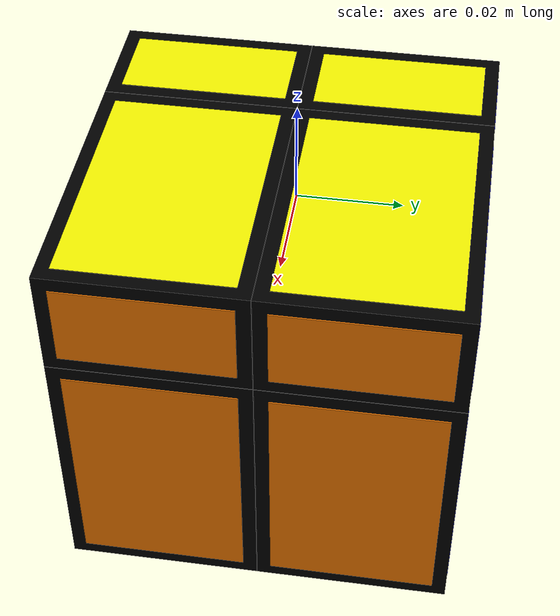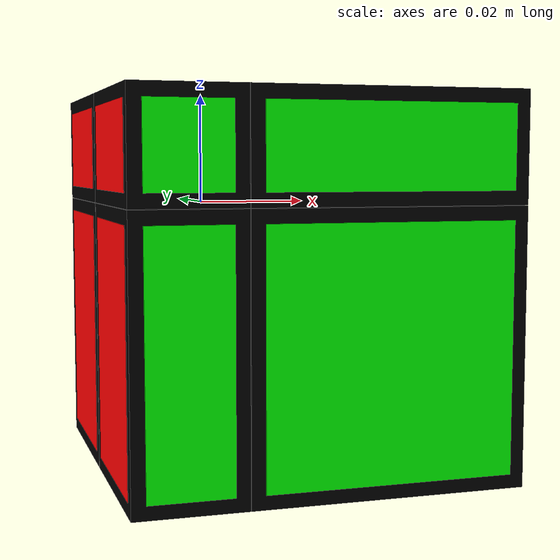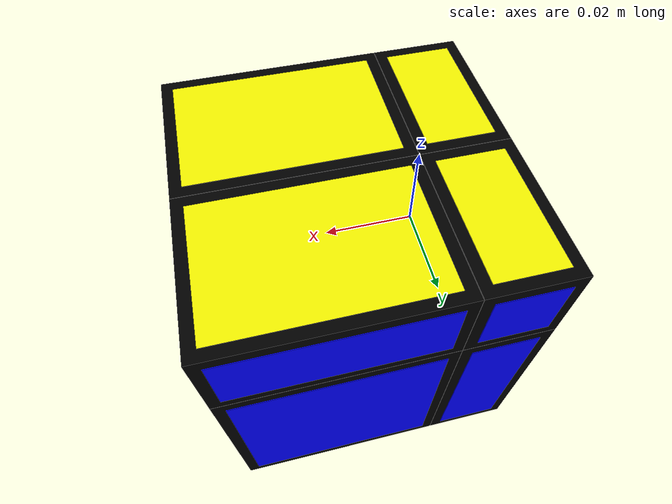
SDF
<?xml version="1.0" ?>
<sdf version="1.7">
	<model name="mirror_cube_2x2">
		<link name="center"/>
		<link name="cubie_0_0_0">
			<pose>-0.010050000000000002 -0.017550000000000003 -0.025050000000000003 0.0 0.0 0.0</pose>
			<inertial>
				<mass>0.013650000000000004</mass>
				<inertia>
					<ixx>4.237187500000002e-06</ixx>
					<ixy>0.0</ixy>
					<ixz>0.0</ixz>
					<iyy>3.2987500000000017e-06</iyy>
					<iyz>0.0</iyz>
					<izz>1.8484375000000009e-06</izz>
				</inertia>
			</inertial>
			<collision name="collision">
				<geometry>
					<box>
						<size>0.020000000000000004 0.035 0.05</size>
					</box>
				</geometry>
				<surface>
					<friction>
						<ode>
							<mu>0.6</mu>
							<mu2>0.6</mu2>
						</ode>
					</friction>
				</surface>
			</collision>
			<visual name="black">
				<geometry>
					<box>
						<size>0.020000000000000004 0.035 0.05</size>
					</box>
				</geometry>
				<material>
					<diffuse>0 0 0 1</diffuse>
				</material>
			</visual>
			<visual name="red">
				<pose>-0.010000000000000002 0.0 0.0 0.0 0.0 0.0</pose>
				<geometry>
					<box>
						<size>0.00015 0.03 0.045</size>
					</box>
				</geometry>
				<material>
					<diffuse>1 0 0 1</diffuse>
				</material>
			</visual>
			<visual name="green">
				<pose>0.0 -0.0175 0.0 0.0 0.0 0.0</pose>
				<geometry>
					<box>
						<size>0.015 0.0003 0.045</size>
					</box>
				</geometry>
				<material>
					<diffuse>0 1 0 1</diffuse>
				</material>
			</visual>
			<visual name="white">
				<pose>0.0 0.0 -0.025 0.0 0.0 0.0</pose>
				<geometry>
					<box>
						<size>0.015 0.03 0.00045</size>
					</box>
				</geometry>
				<material>
					<diffuse>1 1 1 1</diffuse>
				</material>
			</visual>
		</link>
		<joint name="ball_0_0_0" type="ball">
			<pose>0.010050000000000002 0.017550000000000003 0.025050000000000003 -0.0 -0.0 -0.0</pose>
			<parent>center</parent>
			<child>cubie_0_0_0</child>
			<axis>
				<dynamics>
					<damping>0.1</damping>
				</dynamics>
				<limit>
					<effort>0</effort>
				</limit>
			</axis>
		</joint>
		<link name="cubie_0_0_1">
			<pose>-0.010050000000000002 -0.017550000000000003 0.010050000000000002 0.0 0.0 0.0</pose>
			<inertial>
				<mass>0.005460000000000002</mass>
				<inertia>
					<ixx>7.393750000000004e-07</ixx>
					<ixy>0.0</ixy>
					<ixz>0.0</ixz>
					<iyy>3.640000000000003e-07</iyy>
					<iyz>0.0</iyz>
					<izz>7.393750000000004e-07</izz>
				</inertia>
			</inertial>
			<collision name="collision">
				<geometry>
					<box>
						<size>0.020000000000000004 0.035 0.020000000000000004</size>
					</box>
				</geometry>
				<surface>
					<friction>
						<ode>
							<mu>0.6</mu>
							<mu2>0.6</mu2>
						</ode>
					</friction>
				</surface>
			</collision>
			<visual name="black">
				<geometry>
					<box>
						<size>0.020000000000000004 0.035 0.020000000000000004</size>
					</box>
				</geometry>
				<material>
					<diffuse>0 0 0 1</diffuse>
				</material>
			</visual>
			<visual name="red">
				<pose>-0.010000000000000002 0.0 0.0 0.0 0.0 0.0</pose>
				<geometry>
					<box>
						<size>0.00015 0.03 0.015</size>
					</box>
				</geometry>
				<material>
					<diffuse>1 0 0 1</diffuse>
				</material>
			</visual>
			<visual name="green">
				<pose>0.0 -0.0175 0.0 0.0 0.0 0.0</pose>
				<geometry>
					<box>
						<size>0.015 0.0003 0.015</size>
					</box>
				</geometry>
				<material>
					<diffuse>0 1 0 1</diffuse>
				</material>
			</visual>
			<visual name="yellow">
				<pose>0.0 0.0 0.010000000000000002 0.0 0.0 0.0</pose>
				<geometry>
					<box>
						<size>0.015 0.03 0.00015</size>
					</box>
				</geometry>
				<material>
					<diffuse>1 1 0 1</diffuse>
				</material>
			</visual>
		</link>
		<joint name="ball_0_0_1" type="ball">
			<pose>0.010050000000000002 0.017550000000000003 -0.010050000000000002 -0.0 -0.0 -0.0</pose>
			<parent>center</parent>
			<child>cubie_0_0_1</child>
			<axis>
				<dynamics>
					<damping>0.1</damping>
				</dynamics>
				<limit>
					<effort>0</effort>
				</limit>
			</axis>
		</joint>
		<link name="cubie_0_1_0">
			<pose>-0.010050000000000002 0.017550000000000003 -0.025050000000000003 0.0 0.0 0.0</pose>
			<inertial>
				<mass>0.013650000000000004</mass>
				<inertia>
					<ixx>4.237187500000002e-06</ixx>
					<ixy>0.0</ixy>
					<ixz>0.0</ixz>
					<iyy>3.2987500000000017e-06</iyy>
					<iyz>0.0</iyz>
					<izz>1.8484375000000009e-06</izz>
				</inertia>
			</inertial>
			<collision name="collision">
				<geometry>
					<box>
						<size>0.020000000000000004 0.035 0.05</size>
					</box>
				</geometry>
				<surface>
					<friction>
						<ode>
							<mu>0.6</mu>
							<mu2>0.6</mu2>
						</ode>
					</friction>
				</surface>
			</collision>
			<visual name="black">
				<geometry>
					<box>
						<size>0.020000000000000004 0.035 0.05</size>
					</box>
				</geometry>
				<material>
					<diffuse>0 0 0 1</diffuse>
				</material>
			</visual>
			<visual name="red">
				<pose>-0.010000000000000002 0.0 0.0 0.0 0.0 0.0</pose>
				<geometry>
					<box>
						<size>0.00015 0.03 0.045</size>
					</box>
				</geometry>
				<material>
					<diffuse>1 0 0 1</diffuse>
				</material>
			</visual>
			<visual name="blue">
				<pose>0.0 0.0175 0.0 0.0 0.0 0.0</pose>
				<geometry>
					<box>
						<size>0.015 0.0003 0.045</size>
					</box>
				</geometry>
				<material>
					<diffuse>0 0 1 1</diffuse>
				</material>
			</visual>
			<visual name="white">
				<pose>0.0 0.0 -0.025 0.0 0.0 0.0</pose>
				<geometry>
					<box>
						<size>0.015 0.03 0.00045</size>
					</box>
				</geometry>
				<material>
					<diffuse>1 1 1 1</diffuse>
				</material>
			</visual>
		</link>
		<joint name="ball_0_1_0" type="ball">
			<pose>0.010050000000000002 -0.017550000000000003 0.025050000000000003 -0.0 -0.0 -0.0</pose>
			<parent>center</parent>
			<child>cubie_0_1_0</child>
			<axis>
				<dynamics>
					<damping>0.1</damping>
				</dynamics>
				<limit>
					<effort>0</effort>
				</limit>
			</axis>
		</joint>
		<link name="cubie_0_1_1">
			<pose>-0.010050000000000002 0.017550000000000003 0.010050000000000002 0.0 0.0 0.0</pose>
			<inertial>
				<mass>0.005460000000000002</mass>
				<inertia>
					<ixx>7.393750000000004e-07</ixx>
					<ixy>0.0</ixy>
					<ixz>0.0</ixz>
					<iyy>3.640000000000003e-07</iyy>
					<iyz>0.0</iyz>
					<izz>7.393750000000004e-07</izz>
				</inertia>
			</inertial>
			<collision name="collision">
				<geometry>
					<box>
						<size>0.020000000000000004 0.035 0.020000000000000004</size>
					</box>
				</geometry>
				<surface>
					<friction>
						<ode>
							<mu>0.6</mu>
							<mu2>0.6</mu2>
						</ode>
					</friction>
				</surface>
			</collision>
			<visual name="black">
				<geometry>
					<box>
						<size>0.020000000000000004 0.035 0.020000000000000004</size>
					</box>
				</geometry>
				<material>
					<diffuse>0 0 0 1</diffuse>
				</material>
			</visual>
			<visual name="red">
				<pose>-0.010000000000000002 0.0 0.0 0.0 0.0 0.0</pose>
				<geometry>
					<box>
						<size>0.00015 0.03 0.015</size>
					</box>
				</geometry>
				<material>
					<diffuse>1 0 0 1</diffuse>
				</material>
			</visual>
			<visual name="blue">
				<pose>0.0 0.0175 0.0 0.0 0.0 0.0</pose>
				<geometry>
					<box>
						<size>0.015 0.0003 0.015</size>
					</box>
				</geometry>
				<material>
					<diffuse>0 0 1 1</diffuse>
				</material>
			</visual>
			<visual name="yellow">
				<pose>0.0 0.0 0.010000000000000002 0.0 0.0 0.0</pose>
				<geometry>
					<box>
						<size>0.015 0.03 0.00015</size>
					</box>
				</geometry>
				<material>
					<diffuse>1 1 0 1</diffuse>
				</material>
			</visual>
		</link>
		<joint name="ball_0_1_1" type="ball">
			<pose>0.010050000000000002 -0.017550000000000003 -0.010050000000000002 -0.0 -0.0 -0.0</pose>
			<parent>center</parent>
			<child>cubie_0_1_1</child>
			<axis>
				<dynamics>
					<damping>0.1</damping>
				</dynamics>
				<limit>
					<effort>0</effort>
				</limit>
			</axis>
		</joint>
		<link name="cubie_1_0_0">
			<pose>0.025050000000000003 -0.017550000000000003 -0.025050000000000003 0.0 0.0 0.0</pose>
			<inertial>
				<mass>0.034125</mass>
				<inertia>
					<ixx>1.0592968750000005e-05</ixx>
					<ixy>0.0</ixy>
					<ixz>0.0</ixz>
					<iyy>1.4218750000000005e-05</iyy>
					<iyz>0.0</iyz>
					<izz>1.0592968750000005e-05</izz>
				</inertia>
			</inertial>
			<collision name="collision">
				<geometry>
					<box>
						<size>0.05 0.035 0.05</size>
					</box>
				</geometry>
				<surface>
					<friction>
						<ode>
							<mu>0.6</mu>
							<mu2>0.6</mu2>
						</ode>
					</friction>
				</surface>
			</collision>
			<visual name="black">
				<geometry>
					<box>
						<size>0.05 0.035 0.05</size>
					</box>
				</geometry>
				<material>
					<diffuse>0 0 0 1</diffuse>
				</material>
			</visual>
			<visual name="orange">
				<pose>0.025 0.0 0.0 0.0 0.0 0.0</pose>
				<geometry>
					<box>
						<size>0.00045 0.03 0.045</size>
					</box>
				</geometry>
				<material>
					<diffuse>1.0 0.5 0.0 1.0</diffuse>
				</material>
			</visual>
			<visual name="green">
				<pose>0.0 -0.0175 0.0 0.0 0.0 0.0</pose>
				<geometry>
					<box>
						<size>0.045 0.0003 0.045</size>
					</box>
				</geometry>
				<material>
					<diffuse>0 1 0 1</diffuse>
				</material>
			</visual>
			<visual name="white">
				<pose>0.0 0.0 -0.025 0.0 0.0 0.0</pose>
				<geometry>
					<box>
						<size>0.045 0.03 0.00045</size>
					</box>
				</geometry>
				<material>
					<diffuse>1 1 1 1</diffuse>
				</material>
			</visual>
		</link>
		<joint name="ball_1_0_0" type="ball">
			<pose>-0.025050000000000003 0.017550000000000003 0.025050000000000003 -0.0 -0.0 -0.0</pose>
			<parent>center</parent>
			<child>cubie_1_0_0</child>
			<axis>
				<dynamics>
					<damping>0.1</damping>
				</dynamics>
				<limit>
					<effort>0</effort>
				</limit>
			</axis>
		</joint>
		<link name="cubie_1_0_1">
			<pose>0.025050000000000003 -0.017550000000000003 0.010050000000000002 0.0 0.0 0.0</pose>
			<inertial>
				<mass>0.013650000000000004</mass>
				<inertia>
					<ixx>1.8484375000000009e-06</ixx>
					<ixy>0.0</ixy>
					<ixz>0.0</ixz>
					<iyy>3.2987500000000017e-06</iyy>
					<iyz>0.0</iyz>
					<izz>4.237187500000002e-06</izz>
				</inertia>
			</inertial>
			<collision name="collision">
				<geometry>
					<box>
						<size>0.05 0.035 0.020000000000000004</size>
					</box>
				</geometry>
				<surface>
					<friction>
						<ode>
							<mu>0.6</mu>
							<mu2>0.6</mu2>
						</ode>
					</friction>
				</surface>
			</collision>
			<visual name="black">
				<geometry>
					<box>
						<size>0.05 0.035 0.020000000000000004</size>
					</box>
				</geometry>
				<material>
					<diffuse>0 0 0 1</diffuse>
				</material>
			</visual>
			<visual name="orange">
				<pose>0.025 0.0 0.0 0.0 0.0 0.0</pose>
				<geometry>
					<box>
						<size>0.00045 0.03 0.015</size>
					</box>
				</geometry>
				<material>
					<diffuse>1.0 0.5 0.0 1.0</diffuse>
				</material>
			</visual>
			<visual name="green">
				<pose>0.0 -0.0175 0.0 0.0 0.0 0.0</pose>
				<geometry>
					<box>
						<size>0.045 0.0003 0.015</size>
					</box>
				</geometry>
				<material>
					<diffuse>0 1 0 1</diffuse>
				</material>
			</visual>
			<visual name="yellow">
				<pose>0.0 0.0 0.010000000000000002 0.0 0.0 0.0</pose>
				<geometry>
					<box>
						<size>0.045 0.03 0.00015</size>
					</box>
				</geometry>
				<material>
					<diffuse>1 1 0 1</diffuse>
				</material>
			</visual>
		</link>
		<joint name="ball_1_0_1" type="ball">
			<pose>-0.025050000000000003 0.017550000000000003 -0.010050000000000002 -0.0 -0.0 -0.0</pose>
			<parent>center</parent>
			<child>cubie_1_0_1</child>
			<axis>
				<dynamics>
					<damping>0.1</damping>
				</dynamics>
				<limit>
					<effort>0</effort>
				</limit>
			</axis>
		</joint>
		<link name="cubie_1_1_0">
			<pose>0.025050000000000003 0.017550000000000003 -0.025050000000000003 0.0 0.0 0.0</pose>
			<inertial>
				<mass>0.034125</mass>
				<inertia>
					<ixx>1.0592968750000005e-05</ixx>
					<ixy>0.0</ixy>
					<ixz>0.0</ixz>
					<iyy>1.4218750000000005e-05</iyy>
					<iyz>0.0</iyz>
					<izz>1.0592968750000005e-05</izz>
				</inertia>
			</inertial>
			<collision name="collision">
				<geometry>
					<box>
						<size>0.05 0.035 0.05</size>
					</box>
				</geometry>
				<surface>
					<friction>
						<ode>
							<mu>0.6</mu>
							<mu2>0.6</mu2>
						</ode>
					</friction>
				</surface>
			</collision>
			<visual name="black">
				<geometry>
					<box>
						<size>0.05 0.035 0.05</size>
					</box>
				</geometry>
				<material>
					<diffuse>0 0 0 1</diffuse>
				</material>
			</visual>
			<visual name="orange">
				<pose>0.025 0.0 0.0 0.0 0.0 0.0</pose>
				<geometry>
					<box>
						<size>0.00045 0.03 0.045</size>
					</box>
				</geometry>
				<material>
					<diffuse>1.0 0.5 0.0 1.0</diffuse>
				</material>
			</visual>
			<visual name="blue">
				<pose>0.0 0.0175 0.0 0.0 0.0 0.0</pose>
				<geometry>
					<box>
						<size>0.045 0.0003 0.045</size>
					</box>
				</geometry>
				<material>
					<diffuse>0 0 1 1</diffuse>
				</material>
			</visual>
			<visual name="white">
				<pose>0.0 0.0 -0.025 0.0 0.0 0.0</pose>
				<geometry>
					<box>
						<size>0.045 0.03 0.00045</size>
					</box>
				</geometry>
				<material>
					<diffuse>1 1 1 1</diffuse>
				</material>
			</visual>
		</link>
		<joint name="ball_1_1_0" type="ball">
			<pose>-0.025050000000000003 -0.017550000000000003 0.025050000000000003 -0.0 -0.0 -0.0</pose>
			<parent>center</parent>
			<child>cubie_1_1_0</child>
			<axis>
				<dynamics>
					<damping>0.1</damping>
				</dynamics>
				<limit>
					<effort>0</effort>
				</limit>
			</axis>
		</joint>
		<link name="cubie_1_1_1">
			<pose>0.025050000000000003 0.017550000000000003 0.010050000000000002 0.0 0.0 0.0</pose>
			<inertial>
				<mass>0.013650000000000004</mass>
				<inertia>
					<ixx>1.8484375000000009e-06</ixx>
					<ixy>0.0</ixy>
					<ixz>0.0</ixz>
					<iyy>3.2987500000000017e-06</iyy>
					<iyz>0.0</iyz>
					<izz>4.237187500000002e-06</izz>
				</inertia>
			</inertial>
			<collision name="collision">
				<geometry>
					<box>
						<size>0.05 0.035 0.020000000000000004</size>
					</box>
				</geometry>
				<surface>
					<friction>
						<ode>
							<mu>0.6</mu>
							<mu2>0.6</mu2>
						</ode>
					</friction>
				</surface>
			</collision>
			<visual name="black">
				<geometry>
					<box>
						<size>0.05 0.035 0.020000000000000004</size>
					</box>
				</geometry>
				<material>
					<diffuse>0 0 0 1</diffuse>
				</material>
			</visual>
			<visual name="orange">
				<pose>0.025 0.0 0.0 0.0 0.0 0.0</pose>
				<geometry>
					<box>
						<size>0.00045 0.03 0.015</size>
					</box>
				</geometry>
				<material>
					<diffuse>1.0 0.5 0.0 1.0</diffuse>
				</material>
			</visual>
			<visual name="blue">
				<pose>0.0 0.0175 0.0 0.0 0.0 0.0</pose>
				<geometry>
					<box>
						<size>0.045 0.0003 0.015</size>
					</box>
				</geometry>
				<material>
					<diffuse>0 0 1 1</diffuse>
				</material>
			</visual>
			<visual name="yellow">
				<pose>0.0 0.0 0.010000000000000002 0.0 0.0 0.0</pose>
				<geometry>
					<box>
						<size>0.045 0.03 0.00015</size>
					</box>
				</geometry>
				<material>
					<diffuse>1 1 0 1</diffuse>
				</material>
			</visual>
		</link>
		<joint name="ball_1_1_1" type="ball">
			<pose>-0.025050000000000003 -0.017550000000000003 -0.010050000000000002 -0.0 -0.0 -0.0</pose>
			<parent>center</parent>
			<child>cubie_1_1_1</child>
			<axis>
				<dynamics>
					<damping>0.1</damping>
				</dynamics>
				<limit>
					<effort>0</effort>
				</limit>
			</axis>
		</joint>
	</model>
</sdf>
